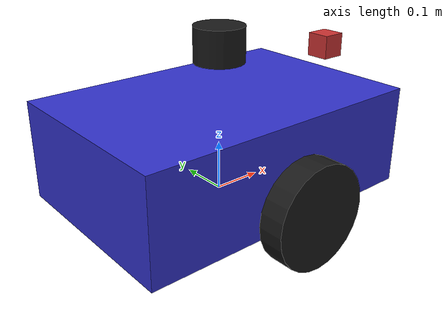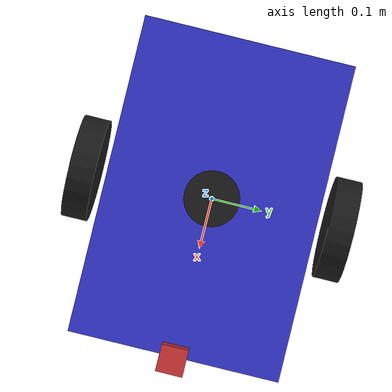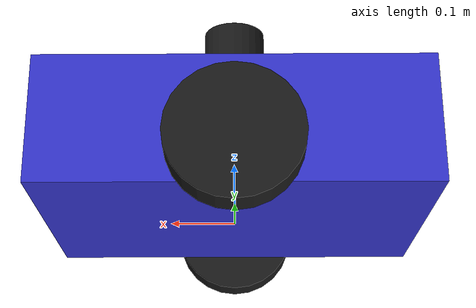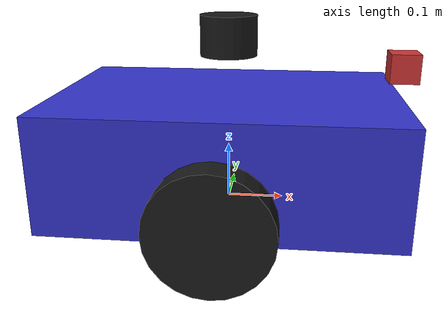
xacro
<?xml version="1.0"?>
<robot xmlns:xacro="http://www.ros.org/wiki/xacro" name="fusion_bot">

  <!-- Constants -->
  <xacro:property name="PI" value="3.1415926535897931"/>

  <!-- Base link -->
  <link name="base_footprint"/>

  <joint name="base_joint" type="fixed">
    <parent link="base_footprint"/>
    <child link="base_link"/>
    <origin xyz="0.0 0.0 0.1" rpy="0 0 0"/>
  </joint>

  <!-- Base link -->
  <link name="base_link">
    <visual>
      <geometry>
        <box size="0.6 0.4 0.2"/>
      </geometry>
      <material name="blue">
        <color rgba="0.2 0.2 0.8 1.0"/>
      </material>
    </visual>
    <collision>
      <geometry>
        <box size="0.6 0.4 0.2"/>
      </geometry>
    </collision>
    <inertial>
      <mass value="10.0"/>
      <inertia ixx="0.1" ixy="0.0" ixz="0.0" iyy="0.1" iyz="0.0" izz="0.1"/>
    </inertial>
  </link>

  <!-- Camera link -->
  <joint name="camera_joint" type="fixed">
    <parent link="base_link"/>
    <child link="camera_link"/>
    <origin xyz="0.3 0.0 0.15" rpy="0 0 0"/>
  </joint>

  <link name="camera_link">
    <visual>
      <geometry>
        <box size="0.05 0.05 0.05"/>
      </geometry>
      <material name="red">
        <color rgba="0.8 0.2 0.2 1.0"/>
      </material>
    </visual>
    <collision>
      <geometry>
        <box size="0.05 0.05 0.05"/>
      </geometry>
    </collision>
    <inertial>
      <mass value="0.1"/>
      <inertia ixx="0.001" ixy="0.0" ixz="0.0" iyy="0.001" iyz="0.0" izz="0.001"/>
    </inertial>
  </link>

  <!-- Camera optical frame -->
  <joint name="camera_optical_joint" type="fixed">
    <parent link="camera_link"/>
    <child link="camera_optical_frame"/>
    <origin xyz="0 0 0" rpy="${-PI/2} 0 ${-PI/2}"/>
  </joint>

  <link name="camera_optical_frame"/>

  <!-- LiDAR link -->
  <joint name="lidar_joint" type="fixed">
    <parent link="base_link"/>
    <child link="lidar_link"/>
    <origin xyz="0.0 0.0 0.2" rpy="0 0 0"/>
  </joint>

  <link name="lidar_link">
    <visual>
      <geometry>
        <cylinder radius="0.05" length="0.07"/>
      </geometry>
      <material name="black">
        <color rgba="0.1 0.1 0.1 1.0"/>
      </material>
    </visual>
    <collision>
      <geometry>
        <cylinder radius="0.05" length="0.07"/>
      </geometry>
    </collision>
    <inertial>
      <mass value="0.2"/>
      <inertia ixx="0.001" ixy="0.0" ixz="0.0" iyy="0.001" iyz="0.0" izz="0.001"/>
    </inertial>
  </link>

  <!-- IMU link -->
  <joint name="imu_joint" type="fixed">
    <parent link="base_link"/>
    <child link="imu_link"/>
    <origin xyz="0.0 0.0 0.0" rpy="0 0 0"/>
  </joint>

  <link name="imu_link">
    <inertial>
      <mass value="0.01"/>
      <inertia ixx="0.0001" ixy="0.0" ixz="0.0" iyy="0.0001" iyz="0.0" izz="0.0001"/>
    </inertial>
  </link>

  <!-- GPS link -->
  <joint name="gps_joint" type="fixed">
    <parent link="base_link"/>
    <child link="gps_link"/>
    <origin xyz="-0.2 0.0 0.15" rpy="0 0 0"/>
  </joint>

  <link name="gps_link">
    <inertial>
      <mass value="0.01"/>
      <inertia ixx="0.0001" ixy="0.0" ixz="0.0" iyy="0.0001" iyz="0.0" izz="0.0001"/>
    </inertial>
  </link>

  <!-- Gazebo plugins -->
  <gazebo reference="base_link">
    <material>Gazebo/Blue</material>
  </gazebo>

  <!-- Differential drive plugin -->
  <gazebo>
    <plugin name="differential_drive_controller" filename="libgazebo_ros_diff_drive.so">
      <update_rate>50</update_rate>
      <left_joint>left_wheel_joint</left_joint>
      <right_joint>right_wheel_joint</right_joint>
      <wheel_separation>0.4</wheel_separation>
      <wheel_diameter>0.2</wheel_diameter>
      <max_wheel_torque>20</max_wheel_torque>
      <command_topic>cmd_vel</command_topic>
      <publish_odom>true</publish_odom>
      <publish_odom_tf>true</publish_odom_tf>
      <publish_wheel_tf>false</publish_wheel_tf>
      <odometry_topic>odom</odometry_topic>
      <odometry_frame>odom</odometry_frame>
      <robot_base_frame>base_footprint</robot_base_frame>
    </plugin>
  </gazebo>

  <!-- Camera plugin -->
  <gazebo reference="camera_link">
    <sensor type="camera" name="camera">
      <update_rate>30.0</update_rate>
      <camera name="front_camera">
        <horizontal_fov>1.3962634</horizontal_fov>
        <image>
          <width>640</width>
          <height>480</height>
          <format>R8G8B8</format>
        </image>
        <clip>
          <near>0.02</near>
          <far>300</far>
        </clip>
      </camera>
      <plugin name="camera_controller" filename="libgazebo_ros_camera.so">
        <frame_name>camera_optical_frame</frame_name>
      </plugin>
    </sensor>
  </gazebo>

  <!-- LiDAR plugin -->
  <gazebo reference="lidar_link">
    <sensor type="ray" name="lidar">
      <pose>0 0 0 0 0 0</pose>
      <visualize>true</visualize>
      <update_rate>10</update_rate>
      <ray>
        <scan>
          <horizontal>
            <samples>360</samples>
            <resolution>1</resolution>
            <min_angle>-3.14159</min_angle>
            <max_angle>3.14159</max_angle>
          </horizontal>
          <vertical>
            <samples>16</samples>
            <resolution>1</resolution>
            <min_angle>-0.261799</min_angle>
            <max_angle>0.261799</max_angle>
          </vertical>
        </scan>
        <range>
          <min>0.1</min>
          <max>30.0</max>
          <resolution>0.01</resolution>
        </range>
      </ray>
      <plugin name="lidar_controller" filename="libgazebo_ros_ray_sensor.so">
        <output_type>sensor_msgs/PointCloud2</output_type>
        <ros>
        <remapping>~/out:=scan/points</remapping>
      </ros>
      <frame_name>lidar_link</frame_name>
      </plugin>
    </sensor>
  </gazebo>

  <!-- IMU plugin -->
  <gazebo reference="imu_link">
    <sensor type="imu" name="imu">
      <always_on>true</always_on>
      <update_rate>100</update_rate>
      <plugin name="imu_controller" filename="libgazebo_ros_imu_sensor.so">
        <frame_name>imu_link</frame_name>
      </plugin>
    </sensor>
  </gazebo>

  <!-- GPS plugin -->
  <gazebo>
    <plugin name="gps_controller" filename="libgazebo_ros_gps_sensor.so">
      <update_rate>10</update_rate>
      <frame_name>gps_link</frame_name>
    </plugin>
  </gazebo>

  <!-- Wheels -->
  <xacro:macro name="wheel" params="prefix reflect">
    <link name="${prefix}_wheel">
      <visual>
        <geometry>
          <cylinder radius="0.1" length="0.05"/>
        </geometry>
        <origin xyz="0 0 0" rpy="${PI/2} 0 0"/>
        <material name="black"/>
      </visual>
      <collision>
        <geometry>
          <cylinder radius="0.1" length="0.05"/>
        </geometry>
        <origin xyz="0 0 0" rpy="${PI/2} 0 0"/>
      </collision>
      <inertial>
        <mass value="1.0"/>
        <inertia ixx="0.01" ixy="0.0" ixz="0.0" iyy="0.01" iyz="0.0" izz="0.01"/>
      </inertial>
    </link>

    <joint name="${prefix}_wheel_joint" type="continuous">
      <parent link="base_link"/>
      <child link="${prefix}_wheel"/>
      <origin xyz="0.0 ${reflect*0.25} -0.05" rpy="0 0 0"/>
      <axis xyz="0 1 0"/>
    </joint>
  </xacro:macro>

  <xacro:wheel prefix="left" reflect="1"/>
  <xacro:wheel prefix="right" reflect="-1"/>

</robot>
